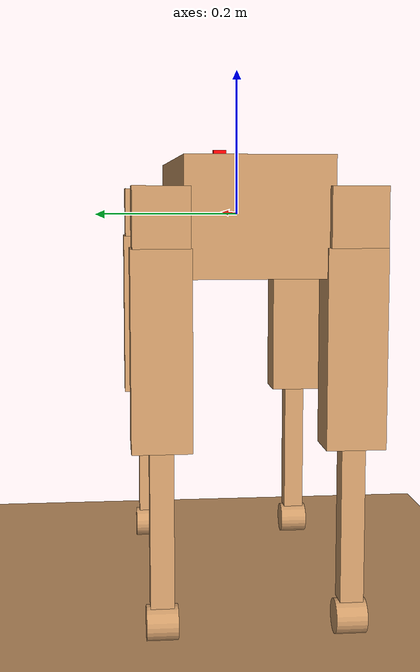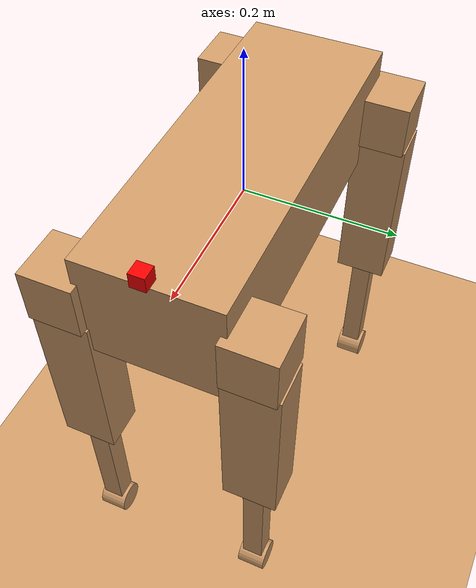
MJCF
<mujoco model="AllegroDog_RT">
    <compiler angle="radian"/>

    <default>
        <joint  damping='1.3' frictionloss="0.3" stiffness="0.3"/>
        <geom margin="0.01" rgba="0.8 0.6 0.4 1" conaffinity="0" contype="1" />
        <motor gear="1"/>
    </default>

    <option timestep="0.005" integrator="RK4"/>

    <size nstack="1000000"/>

    <asset>
        <texture type="skybox" builtin="gradient" width="128" height="128" rgb1=".4 .6 .8"
            rgb2="0 0 0"/>
        <texture name="texplane" type="2d" builtin="checker" rgb1=".2 .3 .4" rgb2=".1 0.15 0.2"
            width="512" height="512"/>

        <material name="MatPlane" reflectance="0.5" shininess="1" specular="1" texrepeat="60 60" texture="texplane"/>
    </asset>
    <worldbody>
        <geom name='floor' pos='0 0 -0.55' friction="0.5 .1 .1" size='40 40 40' type='plane' material="MatPlane" condim="3" conaffinity="2"/>
        <body name="Trunk" pos="0 0 0">
            <site name="Trunk" size=".01" rgba="0 0 0 0"/>
            <geom name="Trunk" size="0.25 0.0925 0.075" type="box" mass="9.25" contype="2"/>
            <freejoint name="root"/>
            <body name="camera_base" pos="0.25 0 0.09">
                <camera name="camera_head" pos="0.25 0 0.09" euler="0 0 0">
                </camera>
                <geom name="camera_b" size="0.01 0.01 0.01" rgba="1 0 0 1" type="box" contype="1"/>
            </body>

            <body name="FL1_LeftShoulder" pos="0.225 0.12 0">
                <joint name="J_FL1_LeftShoulderTrans" pos="0 0 0" axis="1 0 0" limited="true" range="-0.3403 0.5149"/>
                <geom size="0.0375 0.035 0.0375" type="box" mass="0.934" contype="2"/>
                <body name="FL2_LeftArm" pos="0 0 -0.0375">
                    <joint name="J_FL2_LeftShoulderLong" pos="0 0 0" axis="0 1 0" limited="true" range="-1.4835 1.4835" />
                    <geom size="0.03 0.0375 0.125" pos="0 0 -0.125" type="box" mass="1.252" contype="2"/>
                    <body name="FL3_LeftForearm" pos="0 0 -0.25">
                        <joint name="J_FL3_LeftElbow" pos="0 0 0" axis="0 1 0" limited="true" range="-2.1817 2.1817" />
                        <geom size="0.015 0.015 0.1" pos="0 0 -0.1" type="box" mass="0.4557" contype="2"/>
                        <body name="Fo1_LeftHand" pos="0 0 -0.2225">
                            <geom size="0.0225 0.02" quat="0.707107 0.707107 0 0" type="cylinder" mass="0.1806" contype="2"/>
                            <site name="Fo1_LeftHand" size="0.0225 0.03 0.03" quat="0.707107 0.707107 0 0" type="box" rgba="0 0 0 0"/>
                        </body>
                    </body>
                </body>
            </body>
            <body name="FR1_RightShoulder" pos="0.225 -0.12 0">
                <joint name="J_FR1_RightShoulderTrans" pos="0 0 0" axis="1 0 0" limited="true" range="-0.5149 0.3403" />
                <geom size="0.0375 0.035 0.0375" type="box" mass="0.934" contype="2"/>
                <body name="FR2_RightArm" pos="0 0 -0.0375">
                    <joint name="J_FR2_RightShoulderLong" pos="0 0 0" axis="0 1 0" limited="true" range="-1.4835 1.4835" />
                    <geom size="0.03 0.0375 0.125" pos="0 0 -0.125" type="box" mass="1.252" contype="2"/>
                    <body name="FR3_RightForearm" pos="0 0 -0.25">
                        <joint name="J_FR3_RightElbow" pos="0 0 0" axis="0 1 0" limited="true" range="-2.1817 2.1817" />
                        <geom size="0.015 0.015 0.1" pos="0 0 -0.1" type="box" mass="0.4557" contype="2"/>
                        <body name="Fo2_RightHand" pos="0 0 -0.2225">
                            <geom size="0.0225 0.02" quat="0.707107 0.707107 0 0" type="cylinder" contype="2" mass="0.1806" group="2"/>
                            <site name="Fo2_RightHand" size="0.0225 0.03 0.03" quat="0.707107 0.707107 0 0" type="box" rgba="0 0 0 0" group="1"/>
                        </body>
                    </body>
                </body>
            </body>
            <body name="RL1_LeftHip" pos="-0.225 0.12 0">
                <joint name="J_RL1_LeftShoulderTrans" pos="0 0 0" axis="1 0 0" limited="true" range="-0.3403 0.5149" />
                <geom size="0.0375 0.035 0.0375" type="box" mass="0.934" contype="2"/>
                <body name="RL2_LeftThigh" pos="0 0 -0.0375">
                    <joint name="J_RL2_LeftShoulderLong" pos="0 0 0" axis="0 1 0" limited="true" range="-1.4835 1.4835" />
                    <geom size="0.03 0.0375 0.125" pos="0 0 -0.125" type="box" mass="1.252" contype="2"/>
                    <body name="RL3_LeftShin" pos="0 0 -0.25">
                        <joint name="J_RL3_LeftElbow" pos="0 0 0" axis="0 1 0" limited="true" range="-2.1817 2.1817"/>
                        <geom size="0.015 0.015 0.1" pos="0 0 -0.1" type="box" mass="0.4557" contype="2"/>
                        <body name="Fo3_LeftFoot" pos="0 0 -0.2225">
                            <geom size="0.0225 0.02" quat="0.707107 0.707107 0 0" type="cylinder" contype="2" mass="0.1806"/>
                            <site name="Fo3_LeftFoot" size="0.0225 0.03 0.03" quat="0.707107 0.707107 0 0" type="box" rgba="0 0 0 0"/>
                        </body>
                    </body>
                </body>
            </body>
            <body name="RR1_RightHip" pos="-0.225 -0.12 0">
                <joint name="J_RR1_RightShoulderTrans" pos="0 0 0" axis="1 0 0" limited="true" range="-0.5149 0.3403" />
                <geom size="0.0375 0.035 0.0375" type="box" mass="0.934" contype="2"/>
                <body name="RR2_RightThigh" pos="0 0 -0.0375">
                    <joint name="J_RR2_RightShoulderLong" pos="0 0 0" axis="0 1 0" limited="true" range="-1.4835 1.4835" />
                    <geom size="0.03 0.0375 0.125" pos="0 0 -0.125" type="box" mass="1.252" contype="2"/>
                    <body name="RR3_RightShin" pos="0 0 -0.25">
                        <joint name="J_RR3_RightElbow" pos="0 0 0" axis="0 1 0" limited="true" range="-2.1817 2.1817" />
                        <geom size="0.015 0.015 0.1" pos="0 0 -0.1" type="box" mass="0.4557" contype="2"/>
                        <body name="Fo4_RightFoot" pos="0 0 -0.2225">
                            <geom size="0.0225 0.02" quat="0.707107 0.707107 0 0" type="cylinder" contype="2" mass="0.1806"/>
                            <site name="Fo4_RightFoot" size="0.0225 0.03 0.03" quat="0.707107 0.707107 0 0" type="box" rgba="0 0 0 0"/>
                        </body>
                    </body>
                </body>
            </body>
        </body>

<!-- REPLACE ME -->

    </worldbody>

    <actuator>

    <motor joint="J_FL1_LeftShoulderTrans" ctrlrange="-25 25" ctrllimited="true" name="pos_J_FL1_LeftShoulderTrans" forcelimited="true" forcerange="-25 25"/>
    <motor joint="J_FL2_LeftShoulderLong" ctrlrange="-25 25" ctrllimited="true" name="pos_J_FL2_LeftShoulderLong" forcelimited="true" forcerange="-25 25"/>
    <motor joint="J_FL3_LeftElbow" ctrlrange="-25 25" ctrllimited="true" name="pos_J_FL3_LeftElbow" forcelimited="true" forcerange="-25 25"/>
    <motor joint="J_FR1_RightShoulderTrans" ctrlrange="-25 25" ctrllimited="true" name="pos_J_FR1_RightShoulderTrans" forcelimited="true" forcerange="-25 25"/>
    <motor joint="J_FR2_RightShoulderLong" ctrlrange="-25 25" ctrllimited="true" name="pos_J_FR2_RightShoulderLong" forcelimited="true" forcerange="-25 25"/>
    <motor joint="J_FR3_RightElbow" ctrlrange="-25 25" ctrllimited="true" name="pos_J_FR3_RightElbow" forcelimited="true" forcerange="-25 25"/>
    <motor joint="J_RL1_LeftShoulderTrans" ctrlrange="-25 25" ctrllimited="true" name="pos_J_RL1_LeftShoulderTrans" forcelimited="true" forcerange="-25 25"/>
    <motor joint="J_RL2_LeftShoulderLong" ctrlrange="-25 25" ctrllimited="true" name="pos_J_RL2_LeftShoulderLong" forcelimited="true" forcerange="-25 25"/>
    <motor joint="J_RL3_LeftElbow" ctrlrange="-25 25" ctrllimited="true" name="pos_J_RL3_LeftElbow" forcelimited="true" forcerange="-25 25"/>
    <motor joint="J_RR1_RightShoulderTrans" ctrlrange="-25 25" ctrllimited="true" name="pos_J_RR1_RightShoulderTrans" forcelimited="true" forcerange="-25 25"/>
    <motor joint="J_RR2_RightShoulderLong" ctrlrange="-25 25" ctrllimited="true" name="pos_J_RR2_RightShoulderLong" forcelimited="true" forcerange="-25 25"/>
    <motor joint="J_RR3_RightElbow" ctrlrange="-25 25" ctrllimited="true" name="pos_J_RR3_RightElbow" forcelimited="true" forcerange="-25 25"/>

    </actuator>

    <sensor>
        <!-- Real Robot Sensor Info -->
        <gyro name="trunk_gyro" site="Trunk"/>
        <accelerometer name="trunk_accelerometer" site="Trunk"/>
        <framequat name="trunk_orientation" objtype="geom" objname="Trunk"/>
        <jointpos name='sensor_pos_J_FL1_LeftShoulderTrans'  joint='J_FL1_LeftShoulderTrans'/>
        <jointpos name='sensor_pos_J_FL2_LeftShoulderLong'   joint='J_FL2_LeftShoulderLong'/>
        <jointpos name='sensor_pos_J_FL3_LeftElbow'          joint='J_FL3_LeftElbow'/>
        <jointpos name='sensor_pos_J_FR1_RightShoulderTrans' joint='J_FR1_RightShoulderTrans'/>
        <jointpos name='sensor_pos_J_FR2_RightShoulderLong'  joint='J_FR2_RightShoulderLong'/>
        <jointpos name='sensor_pos_J_FR3_RightElbow'         joint='J_FR3_RightElbow'/>
        <jointpos name='sensor_pos_J_RL1_LeftShoulderTrans'  joint='J_RL1_LeftShoulderTrans'/>
        <jointpos name='sensor_pos_J_RL2_LeftShoulderLong'   joint='J_RL2_LeftShoulderLong'/>
        <jointpos name='sensor_pos_J_RL3_LeftElbow'          joint='J_RL3_LeftElbow'/>
        <jointpos name='sensor_pos_J_RR1_RightShoulderTrans' joint='J_RR1_RightShoulderTrans'/>
        <jointpos name='sensor_pos_J_RR2_RightShoulderLong'  joint='J_RR2_RightShoulderLong'/>
        <jointpos name='sensor_pos_J_RR3_RightElbow'         joint='J_RR3_RightElbow'/>
        <jointvel name='sensor_vel_J_FL1_LeftShoulderTrans'  joint='J_FL1_LeftShoulderTrans'/>
        <jointvel name='sensor_vel_J_FL2_LeftShoulderLong'   joint='J_FL2_LeftShoulderLong'/>
        <jointvel name='sensor_vel_J_FL3_LeftElbow'          joint='J_FL3_LeftElbow'/>
        <jointvel name='sensor_vel_J_FR1_RightShoulderTrans' joint='J_FR1_RightShoulderTrans'/>
        <jointvel name='sensor_vel_J_FR2_RightShoulderLong'  joint='J_FR2_RightShoulderLong'/>
        <jointvel name='sensor_vel_J_FR3_RightElbow'         joint='J_FR3_RightElbow'/>
        <jointvel name='sensor_vel_J_RL1_LeftShoulderTrans'  joint='J_RL1_LeftShoulderTrans'/>
        <jointvel name='sensor_vel_J_RL2_LeftShoulderLong'   joint='J_RL2_LeftShoulderLong'/>
        <jointvel name='sensor_vel_J_RL3_LeftElbow'          joint='J_RL3_LeftElbow'/>
        <jointvel name='sensor_vel_J_RR1_RightShoulderTrans' joint='J_RR1_RightShoulderTrans'/>
        <jointvel name='sensor_vel_J_RR2_RightShoulderLong'  joint='J_RR2_RightShoulderLong'/>
        <jointvel name='sensor_vel_J_RR3_RightElbow'         joint='J_RR3_RightElbow'/>

        <touch name="touch_Fo1_LeftHand" site="Fo1_LeftHand"/>
        <touch name="touch_Fo2_RightHand" site="Fo2_RightHand"/>
        <touch name="touch_Fo3_LeftFoot" site="Fo3_LeftFoot"/>
        <touch name="touch_Fo4_RightFoot" site="Fo4_RightFoot"/>

        <!-- Extra Info -->
        <velocimeter name="trunk_velocimeter" site="Trunk"/>

        <framepos name='sensor_pos_F_FL1_LeftShoulder'  objtype="body"    objname='FL1_LeftShoulder'/>
        <framepos name='sensor_pos_F_FL2_LeftArm'       objtype="body"    objname='FL2_LeftArm'/>
        <framepos name='sensor_pos_F_FL3_LeftForearm'   objtype="body"    objname='FL3_LeftForearm'/>
        <framepos name='sensor_pos_F_Fo1_LeftHand'      objtype="body"    objname='Fo1_LeftHand'/>

        <framepos name='sensor_pos_F_FR1_RightShoulder' objtype="body"    objname='FR1_RightShoulder'/>
        <framepos name='sensor_pos_F_FR2_RightArm'      objtype="body"    objname='FR2_RightArm'/>
        <framepos name='sensor_pos_F_FR3_RightForearm'  objtype="body"    objname='FR3_RightForearm'/>
        <framepos name='sensor_pos_F_Fo2_RightHand'     objtype="body"    objname='Fo2_RightHand'/>

        <framepos name='sensor_pos_F_RL1_LeftHip'       objtype="body"    objname='RL1_LeftHip'/>
        <framepos name='sensor_pos_F_RL2_LeftThigh'     objtype="body"    objname='RL2_LeftThigh'/>
        <framepos name='sensor_pos_F_RL3_LeftShin'      objtype="body"    objname='RL3_LeftShin'/>
        <framepos name='sensor_pos_F_Fo3_LeftFoot'      objtype="body"    objname='Fo3_LeftFoot'/>

        <framepos name='sensor_pos_F_RR1_RightHips'     objtype="body"    objname='RR1_RightHip'/>
        <framepos name='sensor_pos_F_RR2_RightThigh'    objtype="body"    objname='RR2_RightThigh'/>
        <framepos name='sensor_pos_F_RR3_RightShin'     objtype="body"    objname='RR3_RightShin'/>
        <framepos name='sensor_pos_F_Fo4_RightFoot'     objtype="body"    objname='Fo4_RightFoot'/>
    </sensor>
</mujoco>
